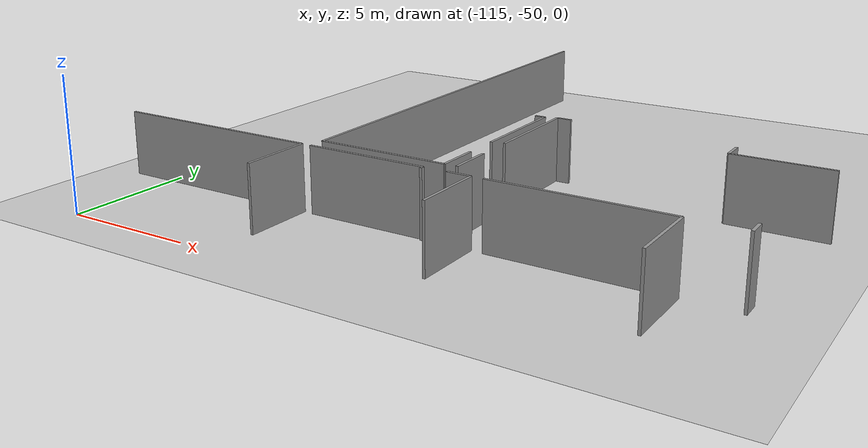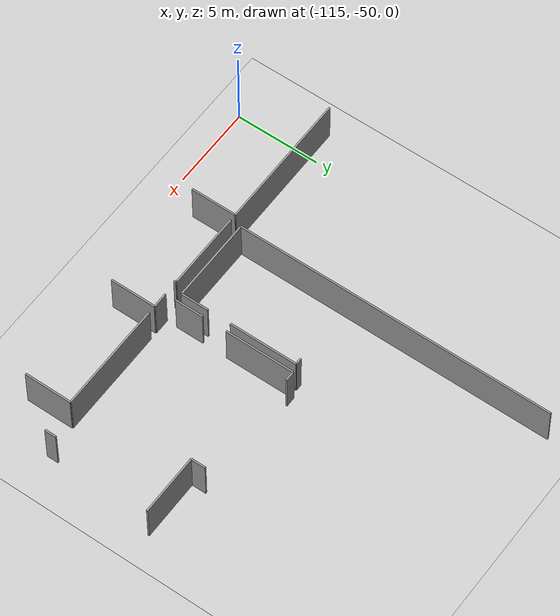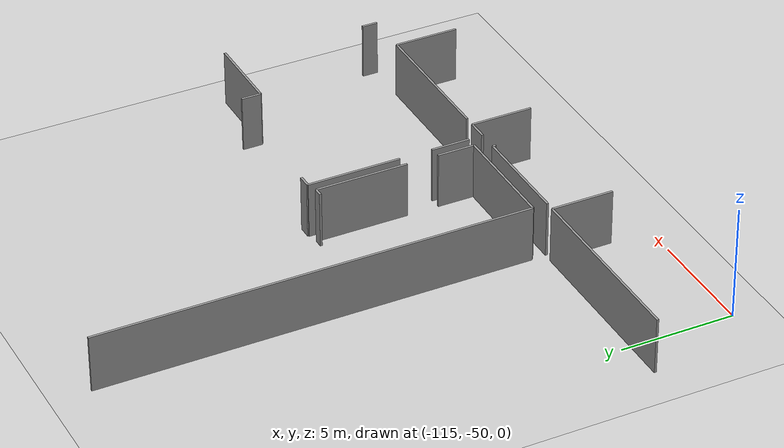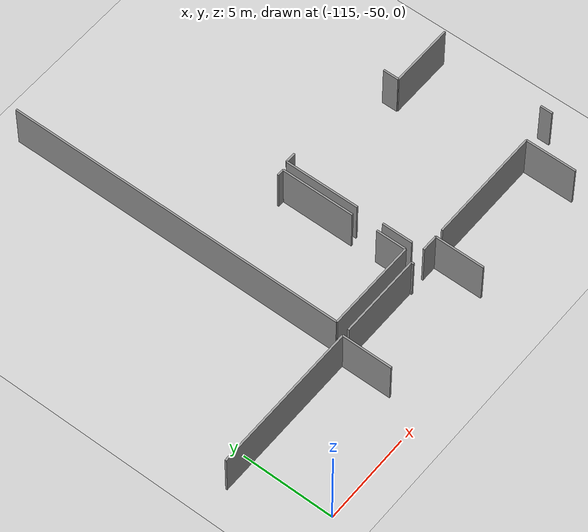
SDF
<sdf version="1.6">
 <world name="default">
  <model name="ground_plane">
   <static>1</static>
   <link name="link">
    <collision name="collision">
     <geometry><plane><normal>0 0 1</normal><size>100 100</size></plane></geometry>
     <surface><friction><ode><mu>100</mu><mu2>50</mu2></ode></friction></surface>
    </collision>
    <visual name="visual">
     <cast_shadows>0</cast_shadows>
     <geometry><plane><normal>0 0 1</normal><size>100 100</size></plane></geometry>
     <material>
      <script><uri>file://media/materials/scripts/gazebo.material</uri><name>Gazebo/Grey</name></script>
     </material>
    </visual>
   </link>
  </model>
  <model name="0510035518_A_40_1_101">
   <static>1</static>
   <link name="Wall_98">
    <collision name="Wall_98_Collision">
     <geometry><box><size>18.971355986 0.1 2.5</size></box></geometry>
     <pose>9.48567799301 0 1.25 0 0 0</pose>
    </collision>
    <visual name="Wall_98_Visual">
     <pose>9.48567799301 0 1.25 0 0 0</pose>
     <geometry><box><size>18.971355986 0.1 2.5</size></box></geometry>
     <material>
      <script><uri>file://media/materials/scripts/gazebo.material</uri><name>Gazebo/Grey</name></script>
      <ambient>1 1 1 1</ambient>
     </material>
    </visual>
    <pose>8.69177516672 -113.445538266 0 0 0 1.57079632679</pose>
   </link>
   <link name="Wall_110">
    <collision name="Wall_110_Collision">
     <geometry><box><size>0.389456970467 0.1 2.5</size></box></geometry>
     <pose>0.194728485233 0 1.25 0 0 0</pose>
    </collision>
    <visual name="Wall_110_Visual">
     <pose>0.194728485233 0 1.25 0 0 0</pose>
     <geometry><box><size>0.389456970467 0.1 2.5</size></box></geometry>
     <material>
      <script><uri>file://media/materials/scripts/gazebo.material</uri><name>Gazebo/Grey</name></script>
      <ambient>1 1 1 1</ambient>
     </material>
    </visual>
    <pose>13.3406160686 -106.355541442 0 0 0 0.0</pose>
   </link>
   <link name="Wall_111">
    <collision name="Wall_111_Collision">
     <geometry><box><size>4.05360431883 0.1 2.5</size></box></geometry>
     <pose>2.02680215942 0 1.25 0 0 0</pose>
    </collision>
    <visual name="Wall_111_Visual">
     <pose>2.02680215942 0 1.25 0 0 0</pose>
     <geometry><box><size>4.05360431883 0.1 2.5</size></box></geometry>
     <material>
      <script><uri>file://media/materials/scripts/gazebo.material</uri><name>Gazebo/Grey</name></script>
      <ambient>1 1 1 1</ambient>
     </material>
    </visual>
    <pose>13.7300730391 -106.355541442 0 0 0 -1.57079632679</pose>
   </link>
   <link name="Wall_112">
    <collision name="Wall_112_Collision">
     <geometry><box><size>1.64699904732 0.1 2.5</size></box></geometry>
     <pose>0.823499523658 0 1.25 0 0 0</pose>
    </collision>
    <visual name="Wall_112_Visual">
     <pose>0.823499523658 0 1.25 0 0 0</pose>
     <geometry><box><size>1.64699904732 0.1 2.5</size></box></geometry>
     <material>
      <script><uri>file://media/materials/scripts/gazebo.material</uri><name>Gazebo/Grey</name></script>
      <ambient>1 1 1 1</ambient>
     </material>
    </visual>
    <pose>13.7300730391 -111.810733566 0 0 0 -1.57079632679</pose>
   </link>
   <link name="Wall_113">
    <collision name="Wall_113_Collision">
     <geometry><box><size>5.0383126295 0.1 2.5</size></box></geometry>
     <pose>2.51915631475 0 1.25 0 0 0</pose>
    </collision>
    <visual name="Wall_113_Visual">
     <pose>2.51915631475 0 1.25 0 0 0</pose>
     <geometry><box><size>5.0383126295 0.1 2.5</size></box></geometry>
     <material>
      <script><uri>file://media/materials/scripts/gazebo.material</uri><name>Gazebo/Grey</name></script>
      <ambient>1 1 1 1</ambient>
     </material>
    </visual>
    <pose>13.7300730391 -113.457732614 0 0 0 3.13917232754</pose>
   </link>
   <link name="Wall_114">
    <collision name="Wall_114_Collision">
     <geometry><box><size>0.571355986027 0.1 2.5</size></box></geometry>
     <pose>0.285677993014 0 1.25 0 0 0</pose>
    </collision>
    <visual name="Wall_114_Visual">
     <pose>0.285677993014 0 1.25 0 0 0</pose>
     <geometry><box><size>0.571355986027 0.1 2.5</size></box></geometry>
     <material>
      <script><uri>file://media/materials/scripts/gazebo.material</uri><name>Gazebo/Grey</name></script>
      <ambient>1 1 1 1</ambient>
     </material>
    </visual>
    <pose>14.1947284852 -106.198539219 0 0 0 0.0</pose>
   </link>
   <link name="Wall_116">
    <collision name="Wall_116_Collision">
     <geometry><box><size>0.868339155287 0.1 2.5</size></box></geometry>
     <pose>0.434169577644 0 1.25 0 0 0</pose>
    </collision>
    <visual name="Wall_116_Visual">
     <pose>0.434169577644 0 1.25 0 0 0</pose>
     <geometry><box><size>0.868339155287 0.1 2.5</size></box></geometry>
     <material>
      <script><uri>file://media/materials/scripts/gazebo.material</uri><name>Gazebo/Grey</name></script>
      <ambient>1 1 1 1</ambient>
     </material>
    </visual>
    <pose>21.1589711019 -106.470371547 0 0 0 -1.57079632679</pose>
   </link>
   <link name="Wall_117">
    <collision name="Wall_117_Collision">
     <geometry><box><size>3.59377580184 0.1 2.5</size></box></geometry>
     <pose>1.79688790092 0 1.25 0 0 0</pose>
    </collision>
    <visual name="Wall_117_Visual">
     <pose>1.79688790092 0 1.25 0 0 0</pose>
     <geometry><box><size>3.59377580184 0.1 2.5</size></box></geometry>
     <material>
      <script><uri>file://media/materials/scripts/gazebo.material</uri><name>Gazebo/Grey</name></script>
      <ambient>1 1 1 1</ambient>
     </material>
    </visual>
    <pose>21.1589711019 -107.338710702 0 0 0 0.0</pose>
   </link>
   <link name="Wall_125">
    <collision name="Wall_125_Collision">
     <geometry><box><size>0.682121308352 0.1 2.5</size></box></geometry>
     <pose>0.341060654176 0 1.25 0 0 0</pose>
    </collision>
    <visual name="Wall_125_Visual">
     <pose>0.341060654176 0 1.25 0 0 0</pose>
     <geometry><box><size>0.682121308352 0.1 2.5</size></box></geometry>
     <material>
      <script><uri>file://media/materials/scripts/gazebo.material</uri><name>Gazebo/Grey</name></script>
      <ambient>1 1 1 1</ambient>
     </material>
    </visual>
    <pose>24.050555732 -114.153826612 0 0 0 1.57079632679</pose>
   </link>
   <link name="Wall_127">
    <collision name="Wall_127_Collision">
     <geometry><box><size>1.69374404573 0.1 2.5</size></box></geometry>
     <pose>0.846872022864 0 1.25 0 0 0</pose>
    </collision>
    <visual name="Wall_127_Visual">
     <pose>0.846872022864 0 1.25 0 0 0</pose>
     <geometry><box><size>1.69374404573 0.1 2.5</size></box></geometry>
     <material>
      <script><uri>file://media/materials/scripts/gazebo.material</uri><name>Gazebo/Grey</name></script>
      <ambient>1 1 1 1</ambient>
     </material>
    </visual>
    <pose>14.2064147348 -113.471705303 0 0 0 1.57079632679</pose>
   </link>
   <link name="Wall_128">
    <collision name="Wall_128_Collision">
     <geometry><box><size>4.11941956128 0.1 2.5</size></box></geometry>
     <pose>2.05970978064 0 1.25 0 0 0</pose>
    </collision>
    <visual name="Wall_128_Visual">
     <pose>2.05970978064 0 1.25 0 0 0</pose>
     <geometry><box><size>4.11941956128 0.1 2.5</size></box></geometry>
     <material>
      <script><uri>file://media/materials/scripts/gazebo.material</uri><name>Gazebo/Grey</name></script>
      <ambient>1 1 1 1</ambient>
     </material>
    </visual>
    <pose>14.2064147348 -110.317942204 0 0 0 1.57363319862</pose>
   </link>
   <link name="Wall_162">
    <collision name="Wall_162_Collision">
     <geometry><box><size>6.46859320419 0.1 2.5</size></box></geometry>
     <pose>3.2342966021 0 1.25 0 0 0</pose>
    </collision>
    <visual name="Wall_162_Visual">
     <pose>3.2342966021 0 1.25 0 0 0</pose>
     <geometry><box><size>6.46859320419 0.1 2.5</size></box></geometry>
     <material>
      <script><uri>file://media/materials/scripts/gazebo.material</uri><name>Gazebo/Grey</name></script>
      <ambient>1 1 1 1</ambient>
     </material>
    </visual>
    <pose>15.5859002858 -114.115211178 0 0 0 0.0</pose>
   </link>
   <link name="Wall_163">
    <collision name="Wall_163_Collision">
     <geometry><box><size>2.81511590981 0.1 2.5</size></box></geometry>
     <pose>1.40755795491 0 1.25 0 0 0</pose>
    </collision>
    <visual name="Wall_163_Visual">
     <pose>1.40755795491 0 1.25 0 0 0</pose>
     <geometry><box><size>2.81511590981 0.1 2.5</size></box></geometry>
     <material>
      <script><uri>file://media/materials/scripts/gazebo.material</uri><name>Gazebo/Grey</name></script>
      <ambient>1 1 1 1</ambient>
     </material>
    </visual>
    <pose>22.05449349 -114.115211178 0 0 0 -1.57079632679</pose>
   </link>
   <link name="Wall_166">
    <collision name="Wall_166_Collision">
     <geometry><box><size>4.64071133693 0.1 2.5</size></box></geometry>
     <pose>2.32035566847 0 1.25 0 0 0</pose>
    </collision>
    <visual name="Wall_166_Visual">
     <pose>2.32035566847 0 1.25 0 0 0</pose>
     <geometry><box><size>4.64071133693 0.1 2.5</size></box></geometry>
     <material>
      <script><uri>file://media/materials/scripts/gazebo.material</uri><name>Gazebo/Grey</name></script>
      <ambient>1 1 1 1</ambient>
     </material>
    </visual>
    <pose>8.68110511273 -114.104541124 0 0 0 0.0</pose>
   </link>
   <link name="Wall_167">
    <collision name="Wall_167_Collision">
     <geometry><box><size>0.138202604001 0.1 2.5</size></box></geometry>
     <pose>0.0691013020006 0 1.25 0 0 0</pose>
    </collision>
    <visual name="Wall_167_Visual">
     <pose>0.0691013020006 0 1.25 0 0 0</pose>
     <geometry><box><size>0.138202604001 0.1 2.5</size></box></geometry>
     <material>
      <script><uri>file://media/materials/scripts/gazebo.material</uri><name>Gazebo/Grey</name></script>
      <ambient>1 1 1 1</ambient>
     </material>
    </visual>
    <pose>13.3218164497 -114.104541124 0 0 0 -1.57079632679</pose>
   </link>
   <link name="Wall_170">
    <collision name="Wall_170_Collision">
     <geometry><box><size>0.90416005081 0.1 2.5</size></box></geometry>
     <pose>0.452080025405 0 1.25 0 0 0</pose>
    </collision>
    <visual name="Wall_170_Visual">
     <pose>0.452080025405 0 1.25 0 0 0</pose>
     <geometry><box><size>0.90416005081 0.1 2.5</size></box></geometry>
     <material>
      <script><uri>file://media/materials/scripts/gazebo.material</uri><name>Gazebo/Grey</name></script>
      <ambient>1 1 1 1</ambient>
     </material>
    </visual>
    <pose>14.2262305494 -114.110892347 0 0 0 0.0</pose>
   </link>
   <link name="Wall_171">
    <collision name="Wall_171_Collision">
     <geometry><box><size>2.71781517942 0.1 2.5</size></box></geometry>
     <pose>1.35890758971 0 1.25 0 0 0</pose>
    </collision>
    <visual name="Wall_171_Visual">
     <pose>1.35890758971 0 1.25 0 0 0</pose>
     <geometry><box><size>2.71781517942 0.1 2.5</size></box></geometry>
     <material>
      <script><uri>file://media/materials/scripts/gazebo.material</uri><name>Gazebo/Grey</name></script>
      <ambient>1 1 1 1</ambient>
     </material>
    </visual>
    <pose>15.1303906002 -114.110892347 0 0 0 -1.57079632679</pose>
   </link>
   <link name="Wall_177">
    <collision name="Wall_177_Collision">
     <geometry><box><size>8.29215624008 0.1 2.5</size></box></geometry>
     <pose>4.14607812004 0 1.25 0 0 0</pose>
    </collision>
    <visual name="Wall_177_Visual">
     <pose>4.14607812004 0 1.25 0 0 0</pose>
     <geometry><box><size>8.29215624008 0.1 2.5</size></box></geometry>
     <material>
      <script><uri>file://media/materials/scripts/gazebo.material</uri><name>Gazebo/Grey</name></script>
      <ambient>1 1 1 1</ambient>
     </material>
    </visual>
    <pose>0.0 -114.095395364 0 0 0 0.0</pose>
   </link>
   <link name="Wall_178">
    <collision name="Wall_178_Collision">
     <geometry><box><size>2.73763099397 0.1 2.5</size></box></geometry>
     <pose>1.36881549698 0 1.25 0 0 0</pose>
    </collision>
    <visual name="Wall_178_Visual">
     <pose>1.36881549698 0 1.25 0 0 0</pose>
     <geometry><box><size>2.73763099397 0.1 2.5</size></box></geometry>
     <material>
      <script><uri>file://media/materials/scripts/gazebo.material</uri><name>Gazebo/Grey</name></script>
      <ambient>1 1 1 1</ambient>
     </material>
    </visual>
    <pose>8.29215624008 -114.095395364 0 0 0 -1.57079632679</pose>
   </link>
   <pose>-116.8 68.630612893 0 0 0 0</pose>
  </model>
 </world>
</sdf>
